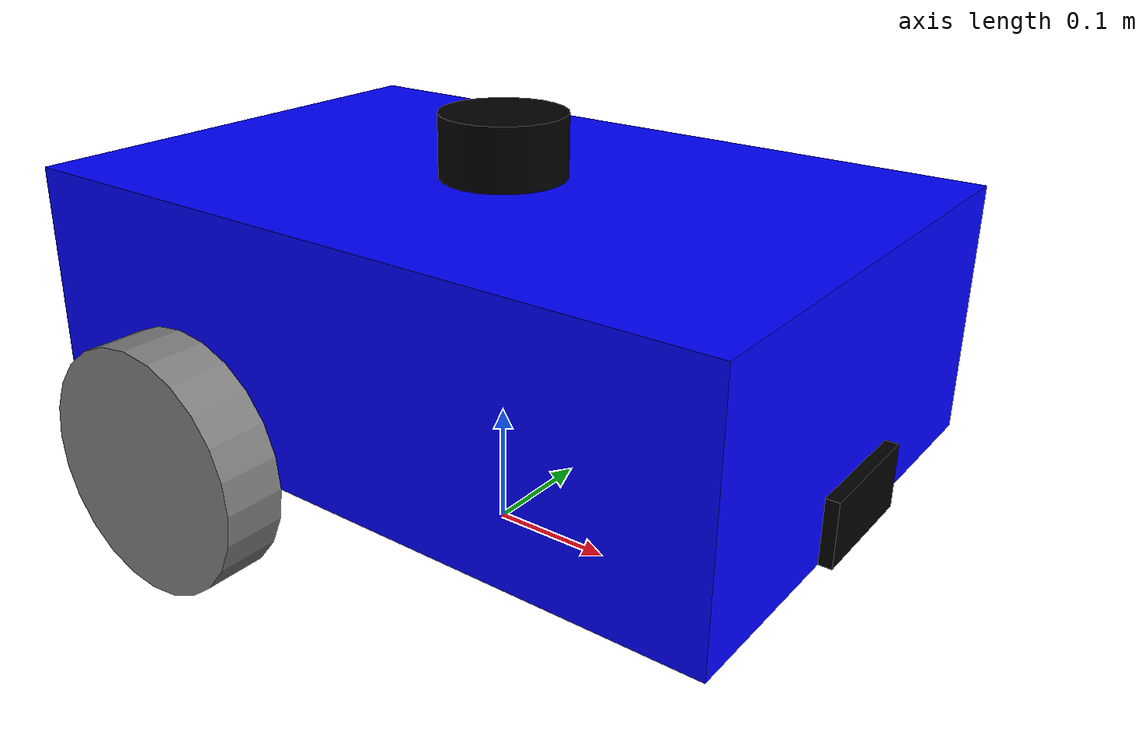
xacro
<?xml version="1.0" encoding="UTF-8"?>
<robot name="diff_summer_robot" xmlns:xacro="http://www.ros.org/wiki/xacro">

    <xacro:include filename="$(find diff_test_description)/urdf/common_properties.xacro"/>
    <xacro:include filename="$(find diff_test_description)/urdf/mobile_base.xacro"/>
    <xacro:include filename="$(find diff_test_description)/urdf/mobile_base_gazebo.xacro"/>
    <xacro:include filename="$(find diff_test_description)/urdf/camera.xacro"/>
    <xacro:include filename="$(find diff_test_description)/urdf/lidar.xacro"/>
</robot>

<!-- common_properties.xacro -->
<robot xmlns:xacro="http://www.ros.org/wiki/xacro">
    <material name="blue">
        <color rgba="0.0 0.0 1.0 1.0"/>
    </material>

    <material name="grey">
        <color rgba="0.5 0.5 0.5 1.0"/>
    </material>

    <material name="black">
        <color rgba="0.0 .0 0.0 1.0"/>
    </material>

    <xacro:macro name="box_inertia" params="l w h m o_xyz o_rpy">
        <inertial>
            <origin xyz="${o_xyz}" rpy="${o_rpy}"/>
            <mass value="${m}"/>
            <inertia ixx="${m*(w*w+h*h)/12.0}" ixy="0.0" ixz="0.0" iyy="${m*(l*l+h*h)/12.0}" iyz="0.0" izz="${m*(w*w+l*l)/12.0}"/>
        </inertial>
    </xacro:macro>
    <xacro:macro name="cylinder_inertia" params="r l m o_xyz o_rpy">
        <inertial>
            <origin xyz="${o_xyz}" rpy="${o_rpy}"/>
            <mass value="${m}"/>
            <inertia ixx="${m * (3.0 * r * r + l * l) / 12.0}" ixy="0.0" ixz="0.0" iyy="${m*(l*l+3*r*r)/12.0}" iyz="0.0" izz="${m * r * r / 2.0}"/>
        </inertial>
    </xacro:macro>

    <xacro:macro name="sphere_inertia" params="r m o_xyz o_rpy">
        <inertial>
            <origin xyz="${o_xyz}" rpy="${o_rpy}"/>
            <mass value="${m}"/>
            <inertia ixx="${2.0 * m * r * r / 5.0}" ixy="0.0" ixz="0.0" iyy="${2.0 * m * r * r / 5.0}" iyz="0.0" izz="${2.0 * m * r * r / 5.0}"/>
        </inertial>
    </xacro:macro>

</robot>

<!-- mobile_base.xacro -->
<robot xmlns:xacro="http://www.ros.org/wiki/xacro">
    <xacro:property name="base_length" value="0.6"/>
    <xacro:property name="base_width" value="${base_length * (2/3)}"/>
    <xacro:property name="base_height" value="${base_length / 3}"/>
    <xacro:property name="wheel_radius" value="${base_length / 6}"/>
    <xacro:property name="wheel_length" value="${wheel_radius / 2}"/>

    <xacro:macro name="wheel_link" params="prefix radius length">
        <link name="${prefix}_wheel_link">
        <xacro:cylinder_inertia r="${radius}" l="${length}" m="1.0" o_xyz="0.0 0.0 0.0" o_rpy="${pi / 2.0} 0.0 0.0"/>
        <visual>
            <geometry>
                <cylinder radius="${radius}" length="${length}"/>
            </geometry>
            <origin xyz="0.0 0.0 0.0" rpy="${pi / 2.0} 0.0 0.0"/>
            <material name="grey"/>
        </visual>
        <collision>
            <origin xyz="0.0 0.0 0.0" rpy="${pi / 2.0} 0.0 0.0"/>
            <geometry>
                <sphere radius="${wheel_radius}"/>
            </geometry>
        </collision>
    </link>
    </xacro:macro>

    <link name="base_footprint"/>

    <link name="base_link">
        <xacro:box_inertia l="${base_length}" w="${base_width}" h="${base_height}" m="5.0" o_xyz="0.0 0.0 ${base_height/2.0}" o_rpy="0.0 0.0 0.0"/>
        <visual>
            <geometry>
                <box size="${base_length} ${base_width} ${base_height}"/>
            </geometry>
            <origin xyz="0.0 0.0 ${base_height/2.0}" rpy="0.0 0.0 0.0"/>
            <material name="blue"/>
        </visual>
        <collision>
            <origin xyz="0.0 0.0 ${base_height/2.0}" rpy="0.0 0.0 0.0"/>
            <geometry>
                <box size="${base_length} ${base_width} ${base_height}"/>
            </geometry>
        </collision>
    </link>

    <xacro:wheel_link prefix="right" radius="${wheel_radius}" length="${wheel_length}"/>

    <xacro:wheel_link prefix="left" radius="${wheel_radius}" length="${wheel_length}"/>

    <link name="caster_wheel_link">
        <xacro:sphere_inertia r="${wheel_radius / 2}" m="0.5" o_xyz="0.0 0.0 0.0" o_rpy="0.0 0.0 0.0"/>
        <visual>
            <geometry>
                <sphere radius="${wheel_radius / 2}"/>
            </geometry>
            <origin xyz="0.0 0.0 0.0" rpy="0 0.0 0.0"/>
            <material name="grey"/>
        </visual>
        <collision>
                <origin xyz="0.0 0.0 0.0" rpy="0.0 0.0 0.0"/>
                <geometry>
                    <sphere radius="${wheel_radius / 2}"/>
                </geometry>
            </collision>

    </link>

    <joint name="footprint_to_base_joint" type="fixed">
        <parent link="base_footprint"/>
        <child link="base_link"/>
        <origin xyz="0.0 0.0 ${wheel_radius}" rpy="0.0 0.0 0.0"/>

    </joint>

    <joint name="base_to_right_wheel" type="continuous">
        <parent link="base_link"/>
        <child link="right_wheel_link"/>
        <origin xyz="${-base_length / 4} -0.225 0.0" rpy="0.0 0.0 0.0"/>
        <axis xyz="0.0 1.0 0.0"/>
    </joint>

    <joint name="base_to_left_wheel" type="continuous">
        <parent link="base_link"/>
        <child link="left_wheel_link"/>
        <origin xyz="${-base_length / 4} 0.225 0.0" rpy="0.0 0.0 0.0"/>
        <axis xyz="0.0 1.0 0.0"/>
    </joint>

    <joint name="base_to_caster_wheel" type="fixed">
        <parent link="base_link"/>
        <child link="caster_wheel_link"/>
        <origin xyz="${base_length / 3} 0.0 -0.05" rpy="0.0 0.0 0.0"/>
        <axis xyz="0.0 1.0 0.0"/>
    </joint>
</robot>

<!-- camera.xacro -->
<robot xmlns:xacro="http://www.ros.org/wiki/xacro">

    <xacro:property name="camera_length" value="0.01"/>
    <xacro:property name="camera_width" value="0.1"/>
    <xacro:property name="camera_height" value="0.05"/>

    <link name="camera_link">
        <xacro:box_inertia l="${camera_length}" w="${camera_width}" h="${camera_height}"
                            m="0.1" o_xyz="0 0 0" o_rpy="0 0 0"/>
        <visual>
            <origin xyz="0 0 0" rpy="0 0 0" />
            <geometry>
                <box size="${camera_length} ${camera_width} ${camera_height}"/>
            </geometry>
            <material name="black"/>
        </visual>

        <collision>
            <origin xyz="0 0 0" rpy="0 0 0" />
            <geometry>
                <box size="${camera_length} ${camera_width} ${camera_height}"/>
            </geometry>
        </collision>
    </link>

    <link name="camera_link_optical"/>

    <joint name="base_camera_joint" type="fixed">
        <parent link="base_link"/>
        <child link="camera_link"/>
        <origin xyz="${(base_length + camera_length)/2} 0 ${camera_height / 2}" rpy="0 0 0"/>

    </joint>

    <joint name="camera_optical_joint" type="fixed">
        <parent link="camera_link"/>
        <child link="camera_link_optical"/>
        <origin xyz="0.0 0.0 0.0" rpy="${-pi/2} 0.0 ${-pi/2}"/>
    </joint>

    <gazebo reference="camera_link">
        <sensor name="camera" type="camera">
            <camera>
                <horizontal_fov>1.3962634</horizontal_fov>
                <image>
                    <width>640</width>
                    <height>480</height>
                    <format>R8G8B8</format>
                </image>
                <clip><!-- que tan lejos puede ver-->
                    <near>0.1</near>0
                    <far>15</far>
                </clip>
                <noise>
                    <type>gaussian</type>
                    <mean>0.0</mean>
                    <stddev>0.01</stddev><!-- standard deviation-->
                </noise>
                <optical_frame_id>camera_link_optical</optical_frame_id>
                <camera_info_topic>camera/camera_info</camera_info_topic>
            </camera>
            <always_on>true</always_on>
            <update_rate>30</update_rate>
            <visualize>true</visualize>
            <topic>camera/image_raw</topic>

            <plugin filename="gz-sim-sensors-system" name="gz::sim::systems::Sensors">
            <render_engine>ogre2</render_engine>
            </plugin>
        </sensor>
    </gazebo>
</robot>

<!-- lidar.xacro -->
<robot xmlns:xacro="http://www.ros.org/wiki/xacro">

    <xacro:property name="lidar_radius" value="0.05"/>
    <xacro:property name="lidar_length" value="0.05"/>
    <link name="lidar_link">
        <xacro:cylinder_inertia r="${lidar_radius}" l="${lidar_length}" m="0.05" o_xyz="0 0 0" o_rpy="0 0 0"></xacro:cylinder_inertia>
        <visual>
            <origin xyz="0.0 0.0 0.0" rpy="0.0 0.0 0.0"/>
            <geometry>
                <cylinder radius="${lidar_radius}" length="${lidar_length}"/>
            </geometry>
            <material name="black"></material>
        </visual>
        <collision>
            <origin xyz="0.0 0.0 0.0" rpy="0.0 0.0 0.0"/>
            <geometry>
                <cylinder radius="${lidar_radius}" length="{lidar_length}"/>
            </geometry>
        </collision>
    </link>
    <joint name="joint_name" type="fixed">
        <parent link="base_link"/>
        <child link="lidar_link"/>
        <origin xyz="0.0 0.0 ${base_height+lidar_length/2}" rpy="0.0 0.0 0.0"/>
    </joint>

    <gazebo reference="lidar_link">
        <sensor name="lidar" type="gpu_lidar">
        <always_on>true</always_on>
        <pose>0 0 0 0 0 0</pose>
        <update_rate>30</update_rate>
        <visualize>true</visualize>
        <topic>/scan</topic>
        <gz_frame_id>lidar_link</gz_frame_id>
        <lidar>
            <scan>
                <horizontal>
                    <samples>320</samples>
                    <resolution>1</resolution>
                    <min_angle>-2.3562</min_angle>
                    <max_angle>2.3562</max_angle>
                </horizontal>
            </scan>
            <range>
                <min>0.1</min>
                <max>30.0</max>
                <resolution>0.01</resolution>
            </range>
            <noise>
                <type>gaussian</type>
                <mean>0.0</mean>
                <stddev>0.01</stddev>
            </noise>
        </lidar>
        </sensor>

    </gazebo>

</robot>
